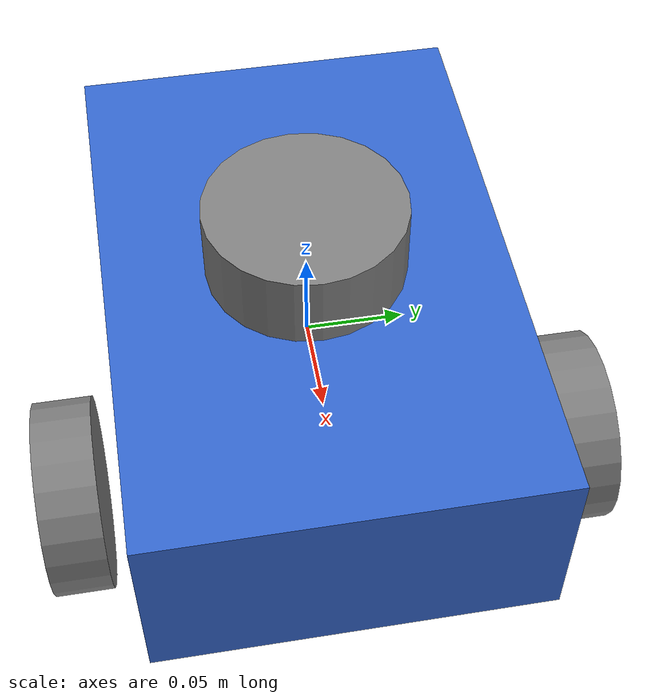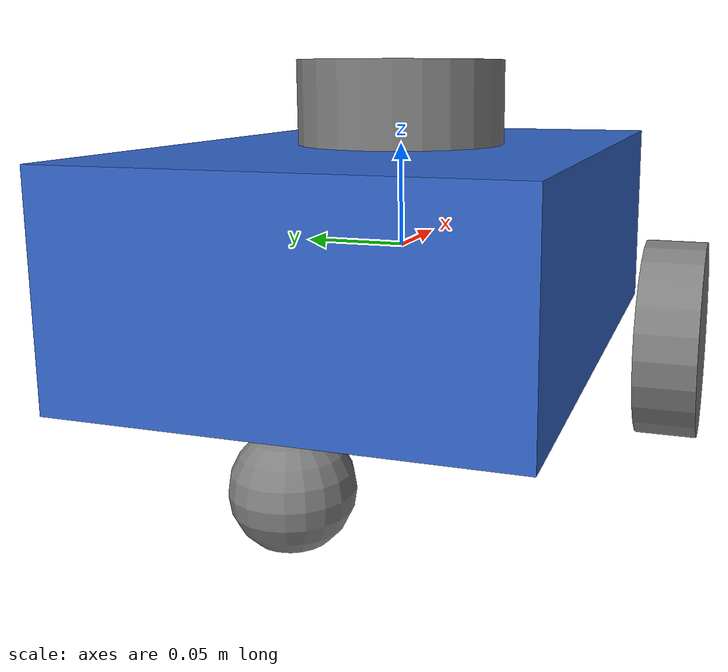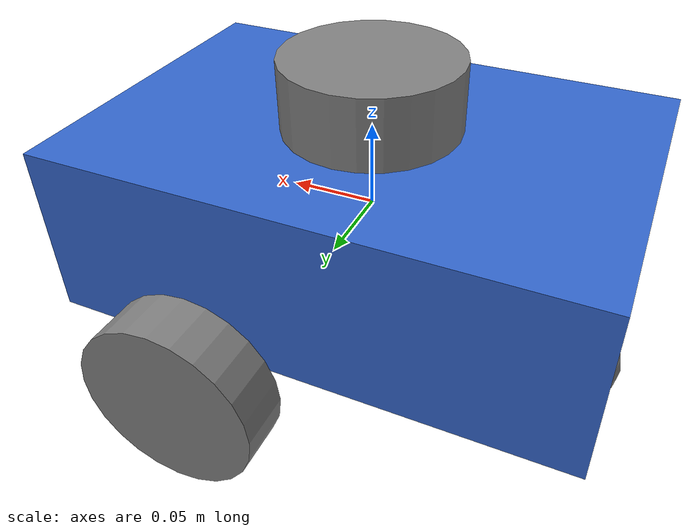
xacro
<?xml version="1.0"?>
<robot name="my_robot" xmlns:xacro="http://ros.org/wiki/xacro">

  <xacro:include filename="$(find my_robot_description)/urdf/robot.gazebo"/>

  <!-- ===== Materials ===== -->
  <material name="blue">
    <color rgba="0.2 0.4 0.8 1.0"/>
  </material>
  <material name="grey">
    <color rgba="0.5 0.5 0.5 1.0"/>
  </material>

  <!-- ===== Chassis ===== -->
  <!-- Box: 0.30 m (x) × 0.20 m (y) × 0.10 m (z), mass 5 kg             -->
  <!-- Inertia: Ixx=m(y²+z²)/12  Iyy=m(x²+z²)/12  Izz=m(x²+y²)/12      -->
  <link name="base_link">
    <visual>
      <geometry>
        <box size="0.30 0.20 0.10"/>
      </geometry>
      <material name="blue"/>
    </visual>
    <collision>
      <geometry>
        <box size="0.30 0.20 0.10"/>
      </geometry>
    </collision>
    <inertial>
      <mass value="5.0"/>
      <inertia ixx="0.02083" ixy="0.0" ixz="0.0"
                              iyy="0.04167" iyz="0.0"
                                            izz="0.05417"/>
    </inertial>
  </link>

  <!-- ===== Left wheel ===== -->
  <!-- Cylinder: r=0.05 m, l=0.03 m, mass 0.5 kg                         -->
  <!-- Joint rotated -π/2 around X so cylinder axis (local Z) → world Y  -->
  <!-- Inertia: Ixx=Iyy=m(3r²+l²)/12  Izz=mr²/2                         -->
  <joint name="left_wheel_joint" type="continuous">
    <parent link="base_link"/>
    <child link="left_wheel_link"/>
    <origin xyz="0.05 0.13 -0.05" rpy="-1.5708 0.0 0.0"/>
    <axis xyz="0 0 1"/>
    <dynamics damping="0.1" friction="0.1"/>
  </joint>

  <link name="left_wheel_link">
    <visual>
      <geometry>
        <cylinder radius="0.05" length="0.03"/>
      </geometry>
      <material name="grey"/>
    </visual>
    <collision>
      <geometry>
        <cylinder radius="0.05" length="0.03"/>
      </geometry>
    </collision>
    <inertial>
      <mass value="0.5"/>
      <inertia ixx="0.00035" ixy="0.0" ixz="0.0"
                              iyy="0.00035" iyz="0.0"
                                            izz="0.000625"/>
    </inertial>
  </link>

  <!-- ===== Right wheel ===== -->
  <joint name="right_wheel_joint" type="continuous">
    <parent link="base_link"/>
    <child link="right_wheel_link"/>
    <origin xyz="0.05 -0.13 -0.05" rpy="-1.5708 0.0 0.0"/>
    <axis xyz="0 0 1"/>
    <dynamics damping="0.1" friction="0.1"/>
  </joint>

  <link name="right_wheel_link">
    <visual>
      <geometry>
        <cylinder radius="0.05" length="0.03"/>
      </geometry>
      <material name="grey"/>
    </visual>
    <collision>
      <geometry>
        <cylinder radius="0.05" length="0.03"/>
      </geometry>
    </collision>
    <inertial>
      <mass value="0.5"/>
      <inertia ixx="0.00035" ixy="0.0" ixz="0.0"
                              iyy="0.00035" iyz="0.0"
                                            izz="0.000625"/>
    </inertial>
  </link>

  <!-- ===== Caster ===== -->
  <!-- Sphere: r=0.025 m, mass 0.1 kg                                     -->
  <!-- base_link is at body centre = 0.10 m above ground                  -->
  <!-- caster centre at 0.025 m above ground → z = 0.025 - 0.10 = -0.075 -->
  <!-- Inertia: I=2mr²/5                                                  -->
  <joint name="caster_joint" type="fixed">
    <parent link="base_link"/>
    <child link="caster_link"/>
    <origin xyz="-0.13 0.0 -0.075" rpy="0.0 0.0 0.0"/>
  </joint>

  <link name="caster_link">
    <visual>
      <geometry>
        <sphere radius="0.025"/>
      </geometry>
      <material name="grey"/>
    </visual>
    <collision>
      <geometry>
        <sphere radius="0.025"/>
      </geometry>
    </collision>
    <inertial>
      <mass value="0.1"/>
      <inertia ixx="0.000025" ixy="0.0" ixz="0.0"
                               iyy="0.000025" iyz="0.0"
                                             izz="0.000025"/>
    </inertial>
  </link>

  <!-- ===== LiDAR link ===== -->
  <!-- Cylinder: r=0.05 m, l=0.04 m, mass 0.1 kg                           -->
  <!-- Ixx=Iyy=m(3r²+l²)/12 ≈ 8.4e-5   Izz=mr²/2 = 1.25e-4               -->
  <link name="lidar_link">
    <visual>
      <geometry>
        <cylinder radius="0.05" length="0.04"/>
      </geometry>
      <material name="grey"/>
    </visual>
    <collision>
      <geometry>
        <cylinder radius="0.05" length="0.04"/>
      </geometry>
    </collision>
    <inertial>
      <mass value="0.1"/>
      <inertia ixx="0.000076" ixy="0.0" ixz="0.0"
                              iyy="0.000076" iyz="0.0"
                                            izz="0.000125"/>
    </inertial>
  </link>

  <!-- ===== LiDAR joint ===== -->
  <!-- Sensor sits on top of chassis: base_link top face at z=+0.05,        -->
  <!-- lidar cylinder half-height = 0.02 → joint at z=0.07                 -->
  <joint name="lidar_joint" type="fixed">
    <parent link="base_link"/>
    <child link="lidar_link"/>
    <origin xyz="0 0 0.07" rpy="0 0 0"/>
  </joint>

</robot>
